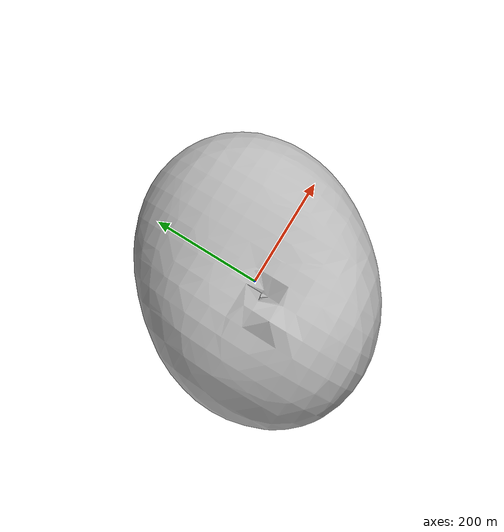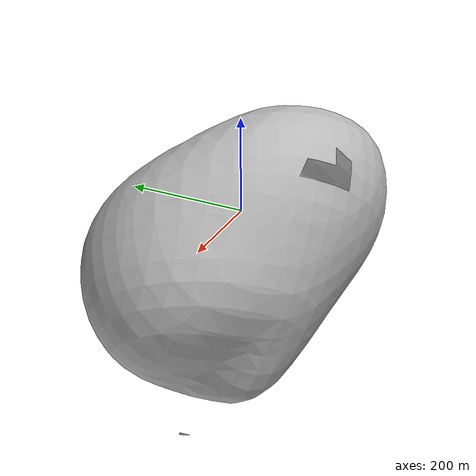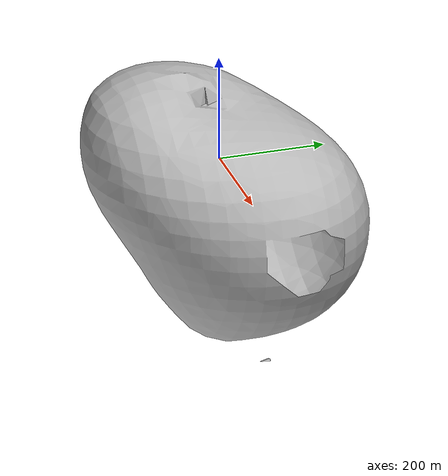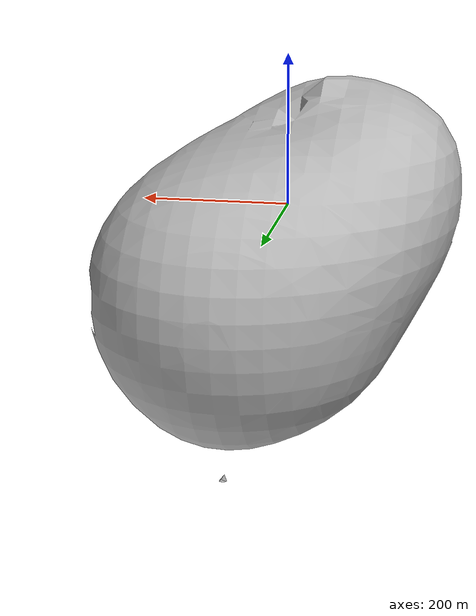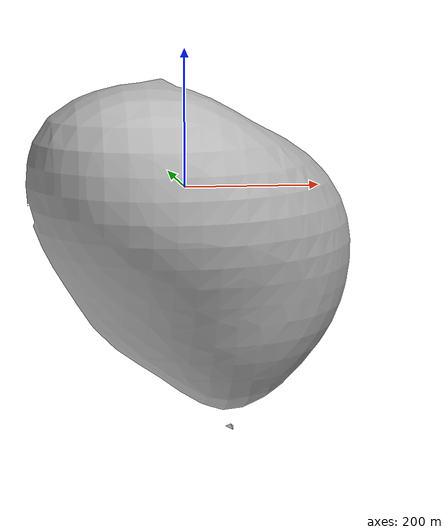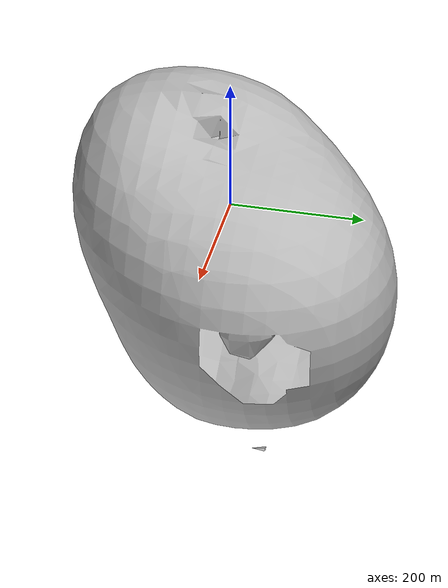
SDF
<?xml version="1.0"?>
<sdf version="1.6">
  <model name="my_model">
    <link name="base_link">
      <visual name="visual">
        <geometry>
          <mesh>
            <uri>file:///robot/3Dreconstruction/meshes/reconstructed_mesh.stl</uri>
            <scale>1 1 1</scale>
          </mesh>
        </geometry>
      </visual>
      <collision name="collision">
        <geometry>
          <mesh>
            <uri>file:///robot/3Dreconstruction/meshes/reconstructed_mesh.stl</uri>
            <scale>1 1 1</scale>
          </mesh>
        </geometry>
      </collision>
    </link>
  </model>
</sdf>
